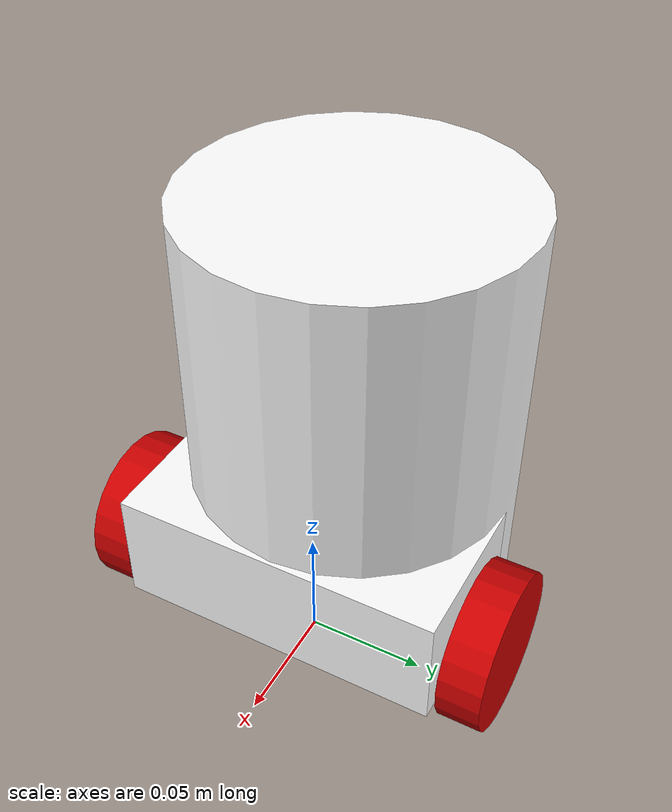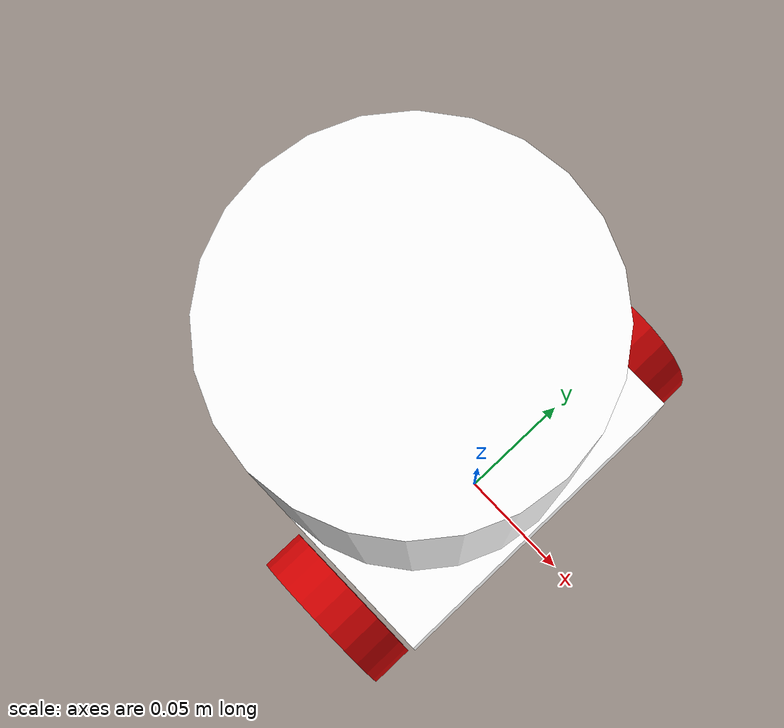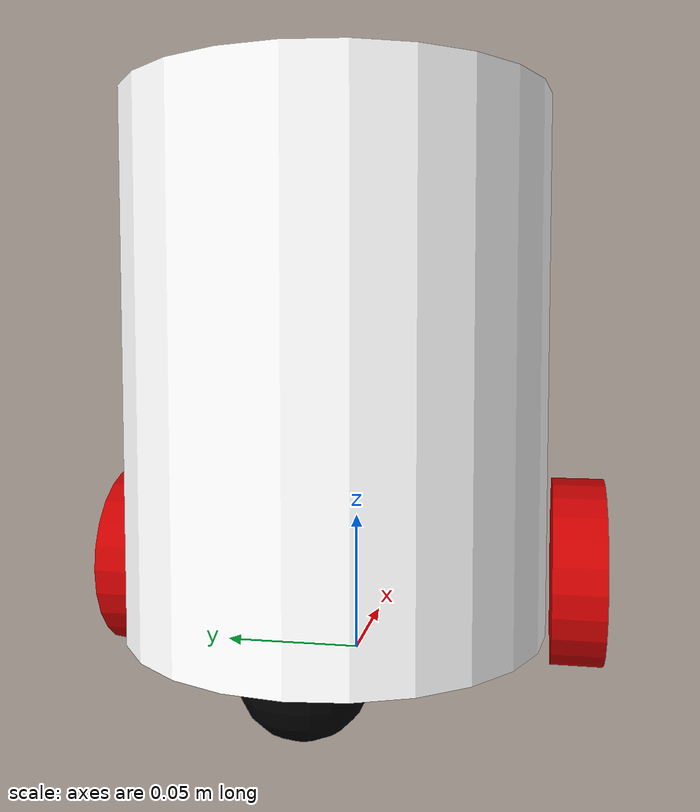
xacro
<?xml version="1.0"?>
<robot name="model01" xmlns:xacro="http://www.ros.org/wiki/xacro">

  <!-- Included URDF/XACRO Files -->
  <xacro:include filename="$(find model01)/urdf/common.urdf.xacro" />
  <xacro:include filename="$(find model01)/urdf/wheel.urdf.xacro" />
  <xacro:include filename="$(find model01)/urdf/caster.urdf.xacro" />

  <!-- base_footprint Definition -->
  <link name="base_footprint" />

  <!-- base Definition -->
  <link name="base_link">
    <origin xyz="0 0 0" rpy="0 0 0"/>
    <visual>
      <geometry>
        <box size="0.069 0.138 0.050"/>
      </geometry>
      <material name="White" />
    </visual>
    <inertial>
      <mass value="0.2" />
      <origin xyz="0 0 0" rpy="0 0 0" />
      <xacro:box_inertia m="0.2" x="0.069" y="0.138" z="0.050" />
    </inertial>
  </link>

  <gazebo reference="base_link">
    <material>Gazebo/White</material>
    <turnGravityOff>false</turnGravityOff>
  </gazebo>

  <joint name="base_joint" type="fixed">
    <origin xyz="0 0 0.045" rpy="0 0 0" />
    <parent link="base_footprint" />
    <child  link="base_link" />
  </joint>

  <!-- body Definition -->
  <link name="body_link">
    <origin xyz="0 0 0" rpy="0 0 0"/>
    <visual>
      <geometry>
        <cylinder radius="0.069" length="0.172" />
      </geometry>
      <material name="White" />
    </visual>
    <inertial>
      <mass value="0.3" />
      <origin xyz="0 0 0" rpy="0 0 0" />
        <xacro:cylinder_inertia  m="0.3" r="0.069" h="0.172" />
    </inertial>
  </link>

  <gazebo reference="body_link">
    <material>Gazebo/White</material>
    <turnGravityOff>false</turnGravityOff>
  </gazebo>

  <joint name="body_joint" type="fixed">
    <origin xyz="-0.036 0 0.106" rpy="0 0 0" />
    <parent link="base_footprint" />
    <child  link="body_link" />
  </joint>

  <!-- Wheel Definitions -->
  <xacro:wheel sub="l" parent="base_footprint"
    transX="0" transY="0.080"  transZ="0.033" />
  <xacro:wheel sub="r" parent="base_footprint"
    transX="0" transY="-0.080"  transZ="0.033" />

  <!-- Caster Definition -->
  <xacro:caster sub="0" parent="base_footprint"
    transX="-0.080" transY="0" transZ="0.020" />

  <!-- Differential drive controller  -->
  <gazebo>
    <plugin name="differential_drive_controller"
      filename="libgazebo_ros_diff_drive.so">
      <commandTopic>cmd_vel</commandTopic>
      <odometryTopic>odom</odometryTopic>
      <odometryFrame>odom</odometryFrame>
      <odometrySource>world</odometrySource>
      <robotBaseFrame>base_footprint</robotBaseFrame>
      <publishOdomTF>true</publishOdomTF>
      <publishWheelTF>false</publishWheelTF>
      <publishTf>1</publishTf>
      <publishWheelJointState>false</publishWheelJointState>
      <legacyMode>false</legacyMode>
      <updateRate>30</updateRate>
      <leftJoint>wheel_l_joint</leftJoint>
      <rightJoint>wheel_r_joint</rightJoint>
      <wheelSeparation>0.160</wheelSeparation>
      <wheelDiameter>0.066</wheelDiameter>
      <wheelAcceleration>1.8</wheelAcceleration>
      <wheelTorque>10</wheelTorque>
      <rosDebugLevel>Debug</rosDebugLevel>
    </plugin>
  </gazebo>

</robot>

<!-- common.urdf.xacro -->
<robot name="common" xmlns:xacro="http://www.ros.org/wiki/xacro">

  <!-- PROPERTY LIST -->
  <!-- All units in m-kg-s-radians unit system -->
  <xacro:property name="M_PI" value="3.1415926535897931" />

  <!-- Inertial macros. Units are kg*m^2 -->
  <xacro:macro name="box_inertia" params="m x y z">
    <inertia ixx="${m*(y*y+z*z)/12}" ixy = "0" ixz = "0"
             iyy="${m*(z*z+x*x)/12}" iyz = "0"
             izz="${m*(x*x+y*y)/12}" />
  </xacro:macro>
  <xacro:macro name="cylinder_inertia" params="m r h">
    <inertia ixx="${m*(3*r*r+h*h)/12}" ixy="0" ixz="0"
             iyy="${m*(3*r*r+h*h)/12}" iyz="0"
             izz="${m*r*r/2}" />
  </xacro:macro>
  <xacro:macro name="sphere_inertia" params="m r">
    <inertia ixx="${m*r*r/5}" ixy="0" ixz="0"
             iyy="${m*r*r/5}" iyz="0"
             izz="${m*r*r/5}" />
  </xacro:macro>

  <!-- Color -->
  <material name="Black">
    <color rgba="0.0 0.0 0.0 1.0"/>
  </material>
  <material name="Blue">
    <color rgba="0.0 0.0 0.8 1.0"/>
  </material>
  <material name="Green">
    <color rgba="0.0 0.8 0.0 1.0"/>
  </material>
  <material name="Gray">
    <color rgba="0.7 0.7 0.7 1.0"/>
  </material>
  <material name="DarkGray">
    <color rgba="0.3 0.3 0.3 1.0"/>
  </material>
  <material name="Red">
    <color rgba="0.8 0.0 0.0 1.0"/>
  </material>
  <material name="White">
    <color rgba="1.0 1.0 1.0 1.0"/>
  </material>
  <material name="Yellow">
    <color rgba="0.8 0.8 0.0 1.0"/>
  </material>

</robot>

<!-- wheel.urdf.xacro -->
<robot name="wheel" xmlns:xacro="http://www.ros.org/wiki/xacro">

  <!-- Wheels -->
  <xacro:property name="wheel_radius" value="0.033" /> <!-- in m -->
  <xacro:property name="wheel_width"  value="0.018" /> <!-- in m -->
  <xacro:property name="wheel_mass"   value="0.100" /> <!-- in kg-->

  <xacro:macro name="wheel" params="sub parent transX transY transZ">
    <!-- sub: l,r 0,1,2,3 etc -->
    <!-- parent: parent link name -->
    <!-- transX transY transZ: xyz position -->

    <link name="wheel_${sub}">
      <visual>
        <origin xyz="0 0 0" rpy="${M_PI/2} 0 0" />
        <geometry>
          <cylinder length="${wheel_width}" radius="${wheel_radius}" />
        </geometry>
        <material name="Red" />
      </visual>
      <collision>
        <origin xyz="0 0 0" rpy="${M_PI/2} 0 0" />
        <geometry>
          <cylinder radius="${wheel_radius}" length="${wheel_width}" />
        </geometry>
      </collision>
      <inertial>
        <mass value="${wheel_mass}" />
        <origin xyz="0 0 0" />
        <xacro:cylinder_inertia  m="${wheel_mass}"
          r="${wheel_radius}" h="${wheel_width}" />
      </inertial>
    </link>

    <gazebo reference="wheel_${sub}">
      <material>Gazebo/Red</material>
      <turnGravityOff>false</turnGravityOff>
      <mu1 value="1.0"/>
      <mu2 value="1.0"/>
      <kp  value="10000000.0" />
      <kd  value="1.0" />
      <fdir1 value="1 0 0"/>
    </gazebo>

    <joint name="wheel_${sub}_joint" type="continuous">
      <parent link="${parent}"/>
      <child link="wheel_${sub}"/>
      <origin xyz="${transX} ${transY} ${transZ}" rpy="0 0 0" />
      <axis xyz="0 1 0"/>
      <limit effort="100" velocity="100"/>
      <joint_properties damping="0.0" friction="0.0"/>
    </joint>

    <!-- Transmission is important to link the joints and the controller -->
    <transmission name="wheel_${sub}_joint_trans">
      <type>transmission_interface/SimpleTransmission</type>
      <joint name="wheel_${sub}_joint">
        <hardwareInterface>VelocityJointInterface</hardwareInterface>
      </joint>
      <actuator name="wheel_${sub}_motor">
        <hardwareInterface>VelocityJointInterface</hardwareInterface>
        <mechanicalReduction>1</mechanicalReduction>
      </actuator>
    </transmission>

  </xacro:macro>
</robot>

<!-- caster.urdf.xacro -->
<robot name="caster" xmlns:xacro="http://www.ros.org/wiki/xacro">

  <!-- Casters -->
  <xacro:property name="caster_radius" value="0.020" /> <!-- in m -->
  <xacro:property name="caster_mass"   value="0.100" /> <!-- in kg-->

  <xacro:macro name="caster" params="sub parent transX transY transZ">
    <!-- sub: l,r 0,1,2,3 etc -->
    <!-- parent: parent link name -->
    <!-- transX transY transZ: xyz position -->

    <link name="caster_${sub}">
      <visual>
        <origin xyz="0 0 0" rpy="0 0 0" />
        <geometry>
          <sphere radius="${caster_radius}" />
        </geometry>
        <material name="Black" />
      </visual>
      <collision>
        <origin xyz="0 0 0" rpy="0 0 0" />
        <geometry>
          <sphere radius="${caster_radius}" />
        </geometry>
      </collision>
      <inertial>
        <mass value="${caster_mass}" />
        <origin xyz="0 0 0" />
        <xacro:sphere_inertia m="${caster_mass}" r="${caster_radius}" />
      </inertial>
    </link>

    <gazebo reference="caster_${sub}">
      <turnGravityOff>false</turnGravityOff>
      <material>Gazebo/Black</material>
      <mu1 value="0.0"/>
      <mu2 value="0.0"/>
    </gazebo>

    <joint name="caster_${sub}_joint" type="fixed">
      <parent link="${parent}"/>
      <child link="caster_${sub}"/>
      <origin xyz="${transX} ${transY} ${transZ}" rpy="0 0 0" />
    </joint>

  </xacro:macro>
</robot>
